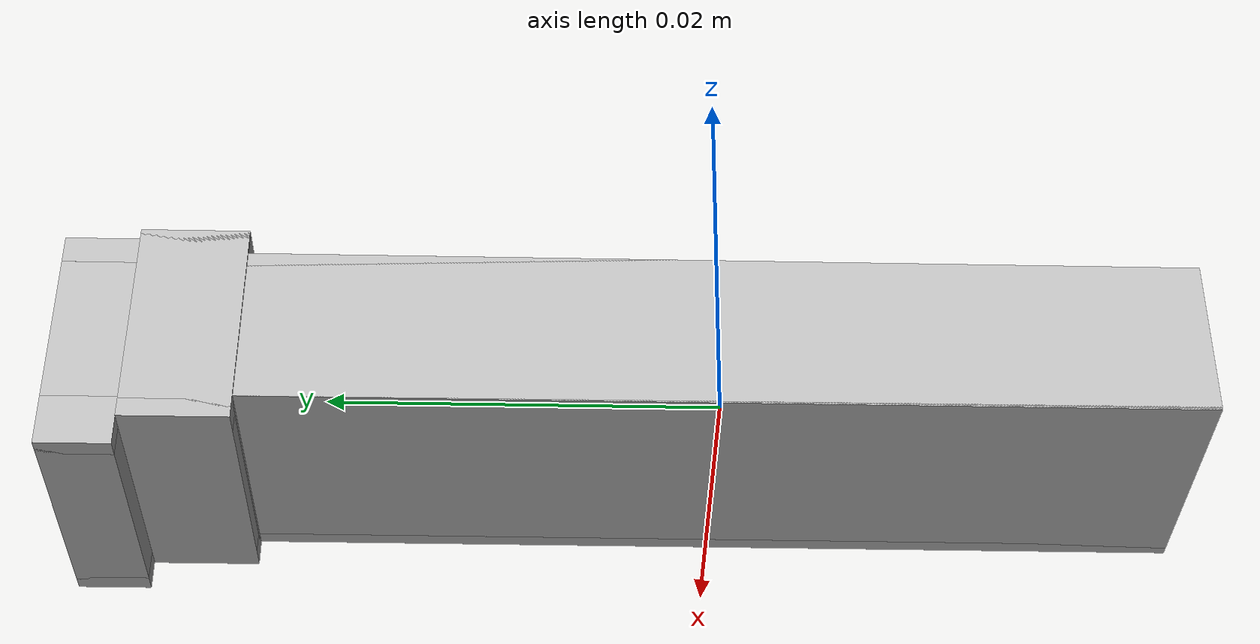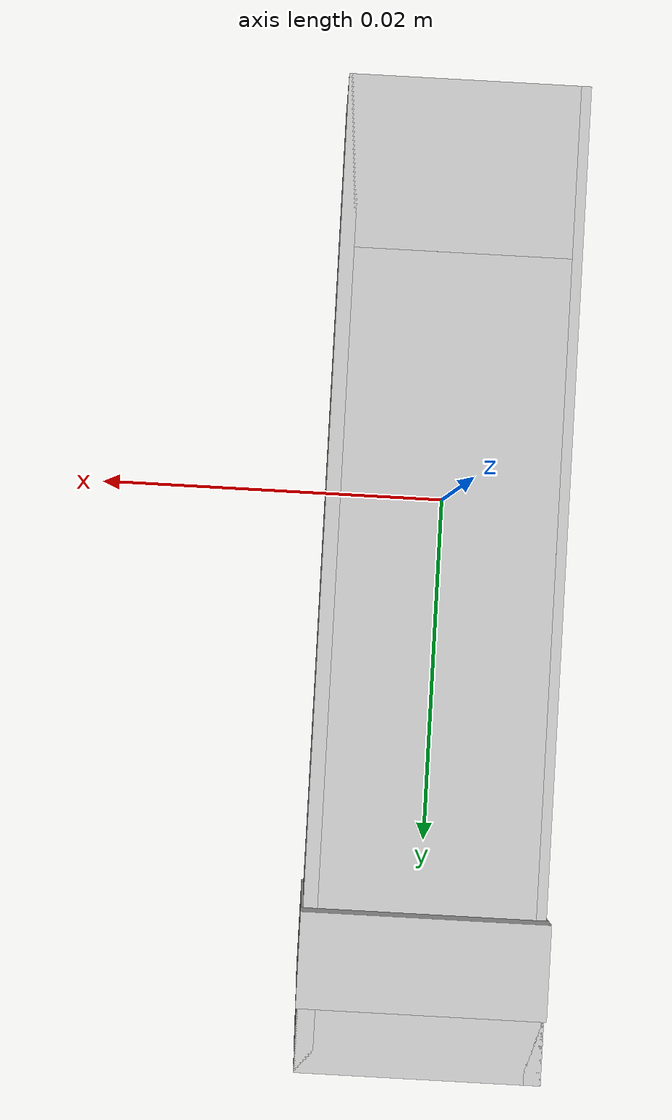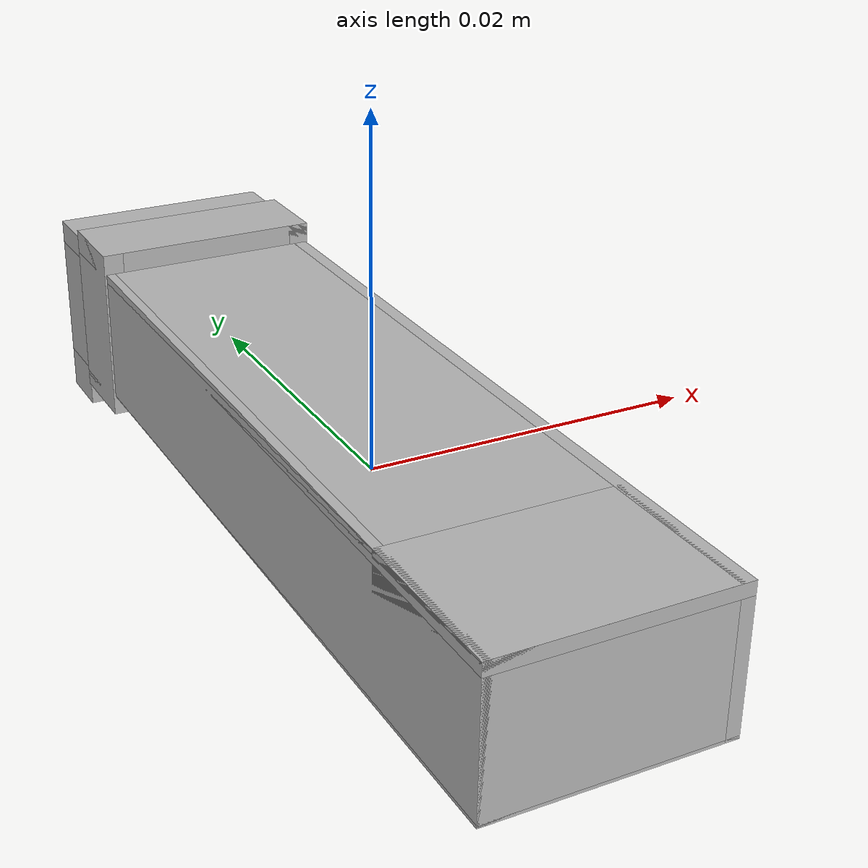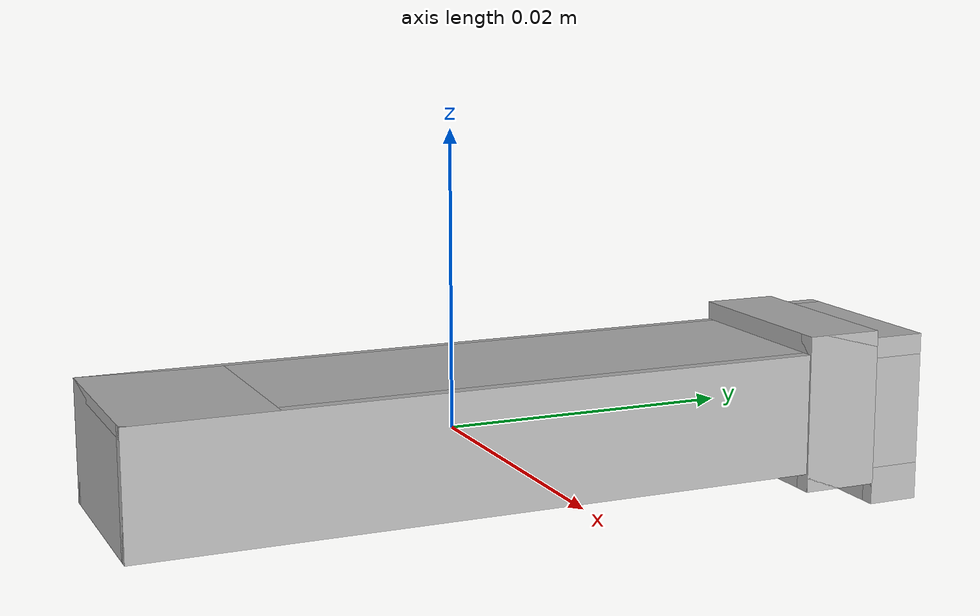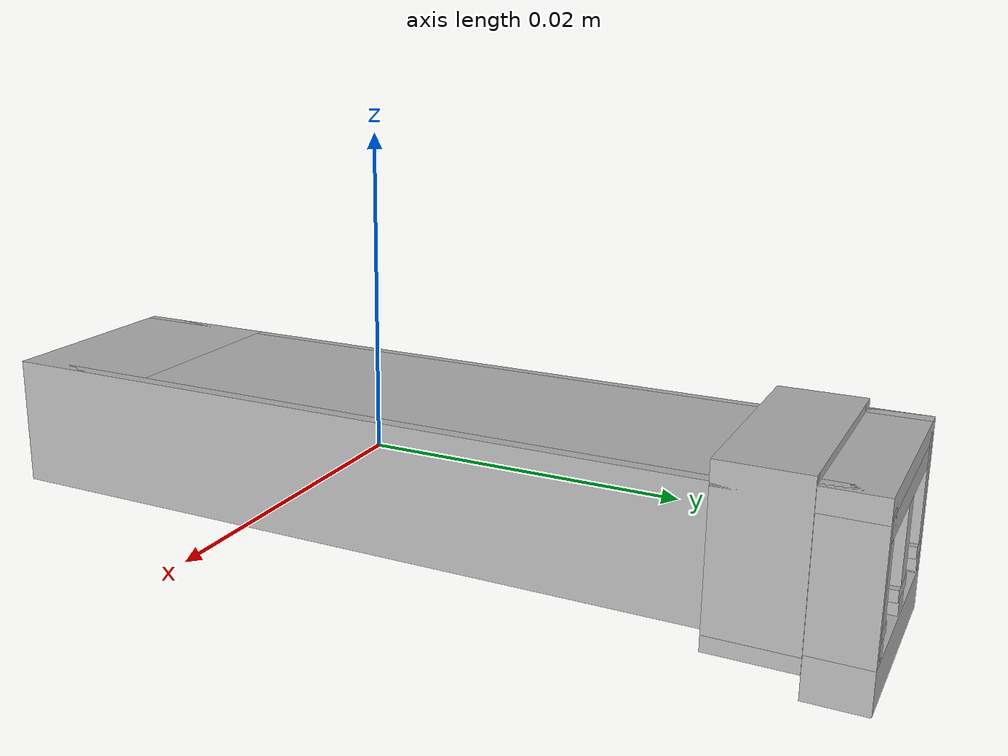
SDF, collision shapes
<?xml version="1.0" ?>
<sdf version="1.6">
  <model name="SFP Module">
    <link name="sfp_module_link">
      <visual name="sfp_module_visual">
        <geometry>
          <mesh>
            <uri>sfp_module_visual.glb</uri>
          </mesh>
        </geometry>
      </visual>
      <collision name="port_collider_box">
        <pose>-0.00571 0.022559 -0.00275 1.570796 -0.0 0.0</pose>
        <geometry>
          <box>
            <size>0.00142 0.00075 0.020375</size>
          </box>
        </geometry>
      </collision>
      <collision name="port_collider_box.001">
        <pose>-0.0 0.022559 -0.00275 1.570796 -0.0 0.0</pose>
        <geometry>
          <box>
            <size>0.0025 0.00075 0.020375</size>
          </box>
        </geometry>
      </collision>
      <collision name="port_collider_box.002">
        <pose>0.0 0.028207 -0.00447 1.570796 -0.0 0.0</pose>
        <geometry>
          <box>
            <size>0.01284 0.00019 0.009077</size>
          </box>
        </geometry>
      </collision>
      <collision name="port_collider_box.003">
        <pose>0.00596 0.022559 -1.8e-05 1.570796 -0.0 0.0</pose>
        <geometry>
          <box>
            <size>0.00092 0.008141 0.020375</size>
          </box>
        </geometry>
      </collision>
      <collision name="port_collider_box.004">
        <pose>0.0 0.022559 0.003049 1.570796 -0.0 0.0</pose>
        <geometry>
          <box>
            <size>0.01284 0.001348 0.020375</size>
          </box>
        </geometry>
      </collision>
      <collision name="port_collider_box.005">
        <pose>-0.00596 0.022559 -1.8e-05 1.570796 -0.0 0.0</pose>
        <geometry>
          <box>
            <size>0.00092 0.008141 0.020375</size>
          </box>
        </geometry>
      </collision>
      <collision name="port_collider_box.006">
        <pose>0.00571 0.022559 -0.00275 1.570796 -0.0 0.0</pose>
        <geometry>
          <box>
            <size>0.00142 0.00075 0.020375</size>
          </box>
        </geometry>
      </collision>
      <collision name="port_collider_box.007">
        <pose>0.0 0.022559 -0.000239 1.570796 -0.0 0.0</pose>
        <geometry>
          <box>
            <size>0.0015 0.007747 0.020375</size>
          </box>
        </geometry>
      </collision>
      <collision name="port_collider_box.008">
        <pose>-0.00571 0.018813 -0.003418 1.570796 -0.0 0.0</pose>
        <geometry>
          <box>
            <size>0.00142 0.00075 0.012883</size>
          </box>
        </geometry>
      </collision>
      <collision name="port_collider_box.009">
        <pose>0.00571 0.018813 -0.003418 1.570796 -0.0 0.0</pose>
        <geometry>
          <box>
            <size>0.00142 0.00075 0.012883</size>
          </box>
        </geometry>
      </collision>
      <collision name="latch_collider_box">
        <pose>0.0 0.030896 -0.005698 1.570796 -0.0 0.0</pose>
        <geometry>
          <box>
            <size>0.01384 0.002646 0.0037</size>
          </box>
        </geometry>
      </collision>
      <collision name="latch_collider_box.001">
        <pose>0.006405 0.030896 -0.001021 1.570796 -0.0 0.0</pose>
        <geometry>
          <box>
            <size>0.001029 0.012 0.0037</size>
          </box>
        </geometry>
      </collision>
      <collision name="latch_collider_box.002">
        <pose>0.0 0.030896 0.004252 1.570796 -0.0 0.0</pose>
        <geometry>
          <box>
            <size>0.01384 0.001454 0.0037</size>
          </box>
        </geometry>
      </collision>
      <collision name="latch_collider_box.003">
        <pose>-0.006437 0.030896 -0.001021 1.570796 -0.0 0.0</pose>
        <geometry>
          <box>
            <size>0.000965 0.012 0.0037</size>
          </box>
        </geometry>
      </collision>
      <collision name="head_collider_box">
        <pose>0.006358 0.026353 0.0 1.570796 -0.0 0.0</pose>
        <geometry>
          <box>
            <size>0.001284 0.011 0.0054</size>
          </box>
        </geometry>
      </collision>
      <collision name="head_collider_box.001">
        <pose>-0.006358 0.026353 0.0 1.570796 -0.0 0.0</pose>
        <geometry>
          <box>
            <size>0.001284 0.011 0.0054</size>
          </box>
        </geometry>
      </collision>
      <collision name="head_collider_box.002">
        <pose>0.0 0.026353 0.004753 1.570796 -0.0 0.0</pose>
        <geometry>
          <box>
            <size>0.014 0.001495 0.0054</size>
          </box>
        </geometry>
      </collision>
      <collision name="head_collider_box.003">
        <pose>0.0 0.026353 -0.005005 1.570796 -0.0 0.0</pose>
        <geometry>
          <box>
            <size>0.014 0.000991 0.0054</size>
          </box>
        </geometry>
      </collision>
      <collision name="body_collider_box">
        <pose>0.0 0.0 0.00383 0.0 0.0 0.0</pose>
        <geometry>
          <box>
            <size>0.01375 0.0473 0.000789</size>
          </box>
        </geometry>
      </collision>
      <collision name="body_collider_box.001">
        <pose>0.0 0.0 -0.004137 0.0 0.0 0.0</pose>
        <geometry>
          <box>
            <size>0.01375 0.0473 0.000176</size>
          </box>
        </geometry>
      </collision>
      <collision name="body_collider_box.002">
        <pose>-0.006588 0.0 0.0 0.0 0.0 0.0</pose>
        <geometry>
          <box>
            <size>0.000574 0.0473 0.00845</size>
          </box>
        </geometry>
      </collision>
      <collision name="body_collider_box.003">
        <pose>0.00647 0.0 0.0 0.0 0.0 0.0</pose>
        <geometry>
          <box>
            <size>0.000811 0.0473 0.00845</size>
          </box>
        </geometry>
      </collision>
      <collision name="body_collider_box.004">
        <pose>0.0 -0.018731 0.0 0.0 0.0 0.0</pose>
        <geometry>
          <box>
            <size>0.01375 0.009838 0.00845</size>
          </box>
        </geometry>
      </collision>
      <collision name="port_collider_box.010">
        <pose>0.0 0.01229 0.000119 1.570796 -0.0 0.0</pose>
        <geometry>
          <box>
            <size>0.01284 0.007763 0.011729</size>
          </box>
        </geometry>
      </collision>
      <collision name="port_collider_box002_collider_box">
        <pose>0.0 0.024453 -0.004175 1.570796 -0.0 0.0</pose>
        <geometry>
          <box>
            <size>0.01284 0.000566 0.001601</size>
          </box>
        </geometry>
      </collision>
      <collision name="port_collider_box002_collider_box_collider_box">
        <pose>0.0 0.018813 -0.003802 1.570796 -0.0 0.0</pose>
        <geometry>
          <box>
            <size>0.01284 0.000353 0.012883</size>
          </box>
        </geometry>
      </collision>
    </link>
  </model>
</sdf>
